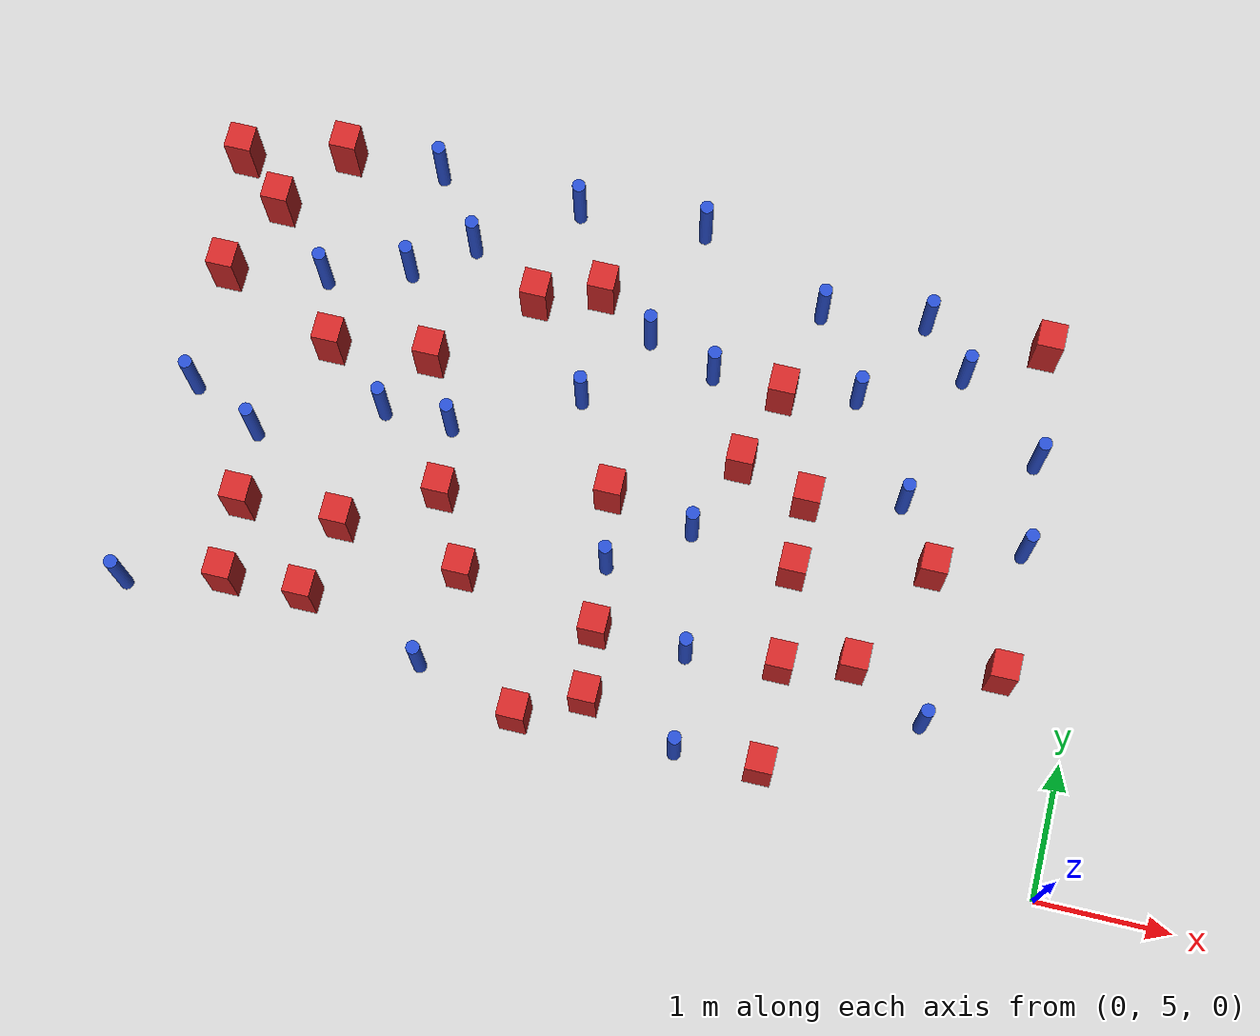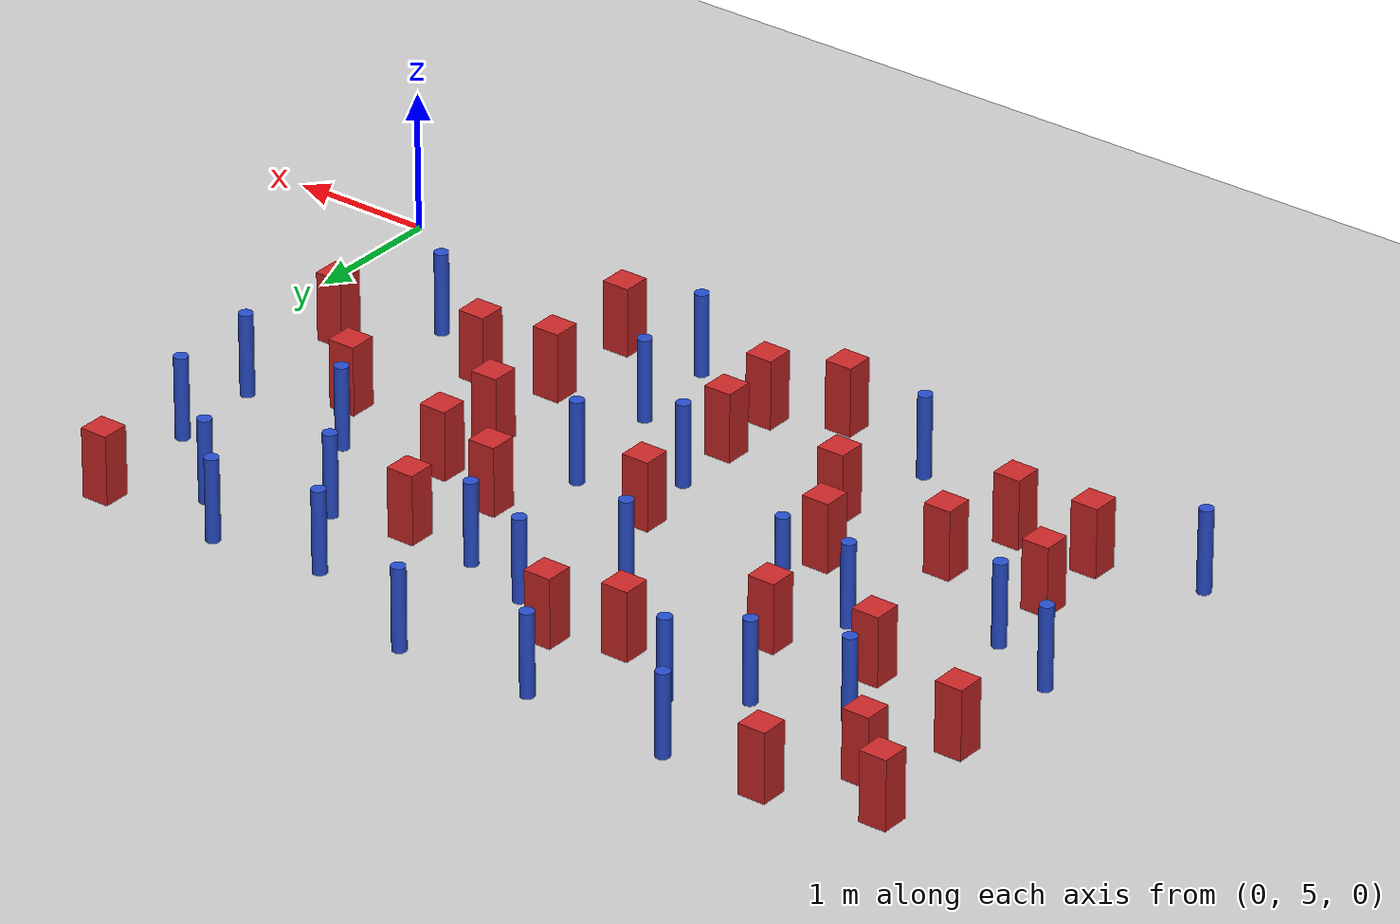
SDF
<sdf version="1.6">
 <world name="default">
  <model name="ground_plane">
   <static>1</static>
   <link name="link">
    <collision name="collision">
     <geometry><plane><normal>0 0 1</normal><size>100 100</size></plane></geometry>
     <surface><friction><ode><mu>100</mu><mu2>50</mu2></ode></friction></surface>
    </collision>
    <visual name="visual">
     <cast_shadows>0</cast_shadows>
     <geometry><plane><normal>0 0 1</normal><size>100 100</size></plane></geometry>
     <material>
      <ambient>1.0 1.0 1.0 1.0</ambient>
      <diffuse>0.8 0.8 0.8 1.0</diffuse>
      <specular>0.01 0.01 0.01 1.000000</specular>
     </material>
    </visual>
   </link>
  </model>
  <model name="square_post_obstacle4">
   <static>true</static>
   <pose>-2.18338594091 7.47727336232 1.91545236811e-07 -7.35059704564e-06 1.12565212e-07 2.39332434364e-05</pose>
   <link name="link">
    <pose>0 0 0.25 0 -0 0</pose>
    <inertial>
     <mass>100</mass>
     <inertia>
      <ixx>0.166667</ixx>
      <ixy>0</ixy>
      <ixz>0</ixz>
      <iyy>0.166667</iyy>
      <iyz>0</iyz>
      <izz>0.166667</izz>
     </inertia>
    </inertial>
    <collision name="collision"><geometry><box><size>.2 .2 .5</size></box></geometry></collision>
    <visual name="visual">
     <geometry><box><size>.2 .2 .5</size></box></geometry>
     <material>
      <script><name>Gazebo/Red</name><uri>file://media/materials/scripts/gazebo.material</uri></script>
     </material>
    </visual>
   </link>
  </model>
  <model name="square_post_obstacle5">
   <static>true</static>
   <pose>-2.09353412493 5.46867902602 1.91545236811e-07 -7.35059704564e-06 1.12565212e-07 2.39332434364e-05</pose>
   <link name="link">
    <pose>0 0 0.25 0 -0 0</pose>
    <inertial>
     <mass>100</mass>
     <inertia>
      <ixx>0.166667</ixx>
      <ixy>0</ixy>
      <ixz>0</ixz>
      <iyy>0.166667</iyy>
      <iyz>0</iyz>
      <izz>0.166667</izz>
     </inertia>
    </inertial>
    <collision name="collision"><geometry><box><size>.2 .2 .5</size></box></geometry></collision>
    <visual name="visual">
     <geometry><box><size>.2 .2 .5</size></box></geometry>
     <material>
      <script><name>Gazebo/Red</name><uri>file://media/materials/scripts/gazebo.material</uri></script>
     </material>
    </visual>
   </link>
  </model>
  <model name="pole_obstacle29">
   <static>true</static>
   <pose>-5.47760591414 8.57900910138 7.38925637345e-09 -8.471706928e-08 1.24976765081e-08 -1.74513093015e-07</pose>
   <link name="link">
    <pose>0 0 0.3 0 -0 0</pose>
    <inertial>
     <mass>1</mass>
     <inertia><ixx>0.145833</ixx><ixy>0</ixy><ixz>0</ixz><iyy>0.145833</iyy><iyz>0</iyz><izz>0.125</izz></inertia>
    </inertial>
    <collision name="collision">
     <geometry><cylinder><radius>0.05</radius><length>.6</length></cylinder></geometry>
    </collision>
    <visual name="visual">
     <geometry><cylinder><radius>0.05</radius><length>.6</length></cylinder></geometry>
     <material>
      <script><name>Gazebo/Blue</name><uri>file://media/materials/scripts/gazebo.material</uri></script>
     </material>
    </visual>
   </link>
  </model>
  <model name="pole_obstacle36">
   <static>true</static>
   <pose>-1.24065969372 8.69629543306 7.38925637345e-09 -8.47170692798e-08 1.24976764881e-08 -1.74513093027e-07</pose>
   <link name="link">
    <pose>0 0 0.3 0 -0 0</pose>
    <inertial>
     <mass>1</mass>
     <inertia><ixx>0.145833</ixx><ixy>0</ixy><ixz>0</ixz><iyy>0.145833</iyy><iyz>0</iyz><izz>0.125</izz></inertia>
    </inertial>
    <collision name="collision">
     <geometry><cylinder><radius>0.05</radius><length>.6</length></cylinder></geometry>
    </collision>
    <visual name="visual">
     <geometry><cylinder><radius>0.05</radius><length>.6</length></cylinder></geometry>
     <material>
      <script><name>Gazebo/Blue</name><uri>file://media/materials/scripts/gazebo.material</uri></script>
     </material>
    </visual>
   </link>
  </model>
  <model name="square_post_obstacle36">
   <static>true</static>
   <pose>-4.81142760637 6.93262582316 1.91545236811e-07 -7.35059704564e-06 1.12565212e-07 2.39332434364e-05</pose>
   <link name="link">
    <pose>0 0 0.25 0 -0 0</pose>
    <inertial>
     <mass>100</mass>
     <inertia>
      <ixx>0.166667</ixx>
      <ixy>0</ixy>
      <ixz>0</ixz>
      <iyy>0.166667</iyy>
      <iyz>0</iyz>
      <izz>0.166667</izz>
     </inertia>
    </inertial>
    <collision name="collision"><geometry><box><size>.2 .2 .5</size></box></geometry></collision>
    <visual name="visual">
     <geometry><box><size>.2 .2 .5</size></box></geometry>
     <material>
      <script><name>Gazebo/Red</name><uri>file://media/materials/scripts/gazebo.material</uri></script>
     </material>
    </visual>
   </link>
  </model>
  <model name="square_post_obstacle41">
   <static>true</static>
   <pose>-6.17321021042 9.38727669501 1.91545236811e-07 -7.35059704564e-06 1.12565212e-07 2.39332434364e-05</pose>
   <link name="link">
    <pose>0 0 0.25 0 -0 0</pose>
    <inertial>
     <mass>100</mass>
     <inertia>
      <ixx>0.166667</ixx>
      <ixy>0</ixy>
      <ixz>0</ixz>
      <iyy>0.166667</iyy>
      <iyz>0</iyz>
      <izz>0.166667</izz>
     </inertia>
    </inertial>
    <collision name="collision"><geometry><box><size>.2 .2 .5</size></box></geometry></collision>
    <visual name="visual">
     <geometry><box><size>.2 .2 .5</size></box></geometry>
     <material>
      <script><name>Gazebo/Red</name><uri>file://media/materials/scripts/gazebo.material</uri></script>
     </material>
    </visual>
   </link>
  </model>
  <model name="square_post_obstacle47">
   <static>true</static>
   <pose>-5.58289400169 5.96464867855 1.91545236811e-07 -7.35059704564e-06 1.12565212e-07 2.39332434364e-05</pose>
   <link name="link">
    <pose>0 0 0.25 0 -0 0</pose>
    <inertial>
     <mass>100</mass>
     <inertia>
      <ixx>0.166667</ixx>
      <ixy>0</ixy>
      <ixz>0</ixz>
      <iyy>0.166667</iyy>
      <iyz>0</iyz>
      <izz>0.166667</izz>
     </inertia>
    </inertial>
    <collision name="collision"><geometry><box><size>.2 .2 .5</size></box></geometry></collision>
    <visual name="visual">
     <geometry><box><size>.2 .2 .5</size></box></geometry>
     <material>
      <script><name>Gazebo/Red</name><uri>file://media/materials/scripts/gazebo.material</uri></script>
     </material>
    </visual>
   </link>
  </model>
  <model name="pole_obstacle48">
   <static>true</static>
   <pose>-1.98327608334 8.35377310548 7.38925637345e-09 -8.47170692797e-08 1.24976764886e-08 -1.74513093027e-07</pose>
   <link name="link">
    <pose>0 0 0.3 0 -0 0</pose>
    <inertial>
     <mass>1</mass>
     <inertia><ixx>0.145833</ixx><ixy>0</ixy><ixz>0</ixz><iyy>0.145833</iyy><iyz>0</iyz><izz>0.125</izz></inertia>
    </inertial>
    <collision name="collision">
     <geometry><cylinder><radius>0.05</radius><length>.6</length></cylinder></geometry>
    </collision>
    <visual name="visual">
     <geometry><cylinder><radius>0.05</radius><length>.6</length></cylinder></geometry>
     <material>
      <script><name>Gazebo/Blue</name><uri>file://media/materials/scripts/gazebo.material</uri></script>
     </material>
    </visual>
   </link>
  </model>
  <model name="square_post_obstacle55">
   <static>true</static>
   <pose>-4.51515152922 6.37917610294 1.91545236811e-07 -7.35059704564e-06 1.12565212e-07 2.39332434364e-05</pose>
   <link name="link">
    <pose>0 0 0.25 0 -0 0</pose>
    <inertial>
     <mass>100</mass>
     <inertia>
      <ixx>0.166667</ixx>
      <ixy>0</ixy>
      <ixz>0</ixz>
      <iyy>0.166667</iyy>
      <iyz>0</iyz>
      <izz>0.166667</izz>
     </inertia>
    </inertial>
    <collision name="collision"><geometry><box><size>.2 .2 .5</size></box></geometry></collision>
    <visual name="visual">
     <geometry><box><size>.2 .2 .5</size></box></geometry>
     <material>
      <script><name>Gazebo/Red</name><uri>file://media/materials/scripts/gazebo.material</uri></script>
     </material>
    </visual>
   </link>
  </model>
  <model name="square_post_obstacle57">
   <static>true</static>
   <pose>-6.81252453637 8.26209978854 1.91545236811e-07 -7.35059704564e-06 1.12565212e-07 2.39332434364e-05</pose>
   <link name="link">
    <pose>0 0 0.25 0 -0 0</pose>
    <inertial>
     <mass>100</mass>
     <inertia>
      <ixx>0.166667</ixx>
      <ixy>0</ixy>
      <ixz>0</ixz>
      <iyy>0.166667</iyy>
      <iyz>0</iyz>
      <izz>0.166667</izz>
     </inertia>
    </inertial>
    <collision name="collision"><geometry><box><size>.2 .2 .5</size></box></geometry></collision>
    <visual name="visual">
     <geometry><box><size>.2 .2 .5</size></box></geometry>
     <material>
      <script><name>Gazebo/Red</name><uri>file://media/materials/scripts/gazebo.material</uri></script>
     </material>
    </visual>
   </link>
  </model>
  <model name="pole_obstacle56">
   <static>true</static>
   <pose>-2.95176064944 7.06821592145 7.38925637345e-09 -8.47170692798e-08 1.24976765033e-08 -1.74513093019e-07</pose>
   <link name="link">
    <pose>0 0 0.3 0 -0 0</pose>
    <inertial>
     <mass>1</mass>
     <inertia><ixx>0.145833</ixx><ixy>0</ixy><ixz>0</ixz><iyy>0.145833</iyy><iyz>0</iyz><izz>0.125</izz></inertia>
    </inertial>
    <collision name="collision">
     <geometry><cylinder><radius>0.05</radius><length>.6</length></cylinder></geometry>
    </collision>
    <visual name="visual">
     <geometry><cylinder><radius>0.05</radius><length>.6</length></cylinder></geometry>
     <material>
      <script><name>Gazebo/Blue</name><uri>file://media/materials/scripts/gazebo.material</uri></script>
     </material>
    </visual>
   </link>
  </model>
  <model name="square_post_obstacle61">
   <static>true</static>
   <pose>-2.53691254353 8.24513015877 1.91545236811e-07 -7.35059704564e-06 1.12565212e-07 2.39332434364e-05</pose>
   <link name="link">
    <pose>0 0 0.25 0 -0 0</pose>
    <inertial>
     <mass>100</mass>
     <inertia>
      <ixx>0.166667</ixx>
      <ixy>0</ixy>
      <ixz>0</ixz>
      <iyy>0.166667</iyy>
      <iyz>0</iyz>
      <izz>0.166667</izz>
     </inertia>
    </inertial>
    <collision name="collision"><geometry><box><size>.2 .2 .5</size></box></geometry></collision>
    <visual name="visual">
     <geometry><box><size>.2 .2 .5</size></box></geometry>
     <material>
      <script><name>Gazebo/Red</name><uri>file://media/materials/scripts/gazebo.material</uri></script>
     </material>
    </visual>
   </link>
  </model>
  <model name="square_post_obstacle64">
   <static>true</static>
   <pose>-2.11454618402 6.22965114612 1.91545236811e-07 -7.35059704564e-06 1.12565212e-07 2.39332434364e-05</pose>
   <link name="link">
    <pose>0 0 0.25 0 -0 0</pose>
    <inertial>
     <mass>100</mass>
     <inertia>
      <ixx>0.166667</ixx>
      <ixy>0</ixy>
      <ixz>0</ixz>
      <iyy>0.166667</iyy>
      <iyz>0</iyz>
      <izz>0.166667</izz>
     </inertia>
    </inertial>
    <collision name="collision"><geometry><box><size>.2 .2 .5</size></box></geometry></collision>
    <visual name="visual">
     <geometry><box><size>.2 .2 .5</size></box></geometry>
     <material>
      <script><name>Gazebo/Red</name><uri>file://media/materials/scripts/gazebo.material</uri></script>
     </material>
    </visual>
   </link>
  </model>
  <model name="square_post_obstacle68">
   <static>true</static>
   <pose>-4.49020691341 8.56332453743 1.91545236811e-07 -7.35059704564e-06 1.12565212e-07 2.39332434364e-05</pose>
   <link name="link">
    <pose>0 0 0.25 0 -0 0</pose>
    <inertial>
     <mass>100</mass>
     <inertia>
      <ixx>0.166667</ixx>
      <ixy>0</ixy>
      <ixz>0</ixz>
      <iyy>0.166667</iyy>
      <iyz>0</iyz>
      <izz>0.166667</izz>
     </inertia>
    </inertial>
    <collision name="collision"><geometry><box><size>.2 .2 .5</size></box></geometry></collision>
    <visual name="visual">
     <geometry><box><size>.2 .2 .5</size></box></geometry>
     <material>
      <script><name>Gazebo/Red</name><uri>file://media/materials/scripts/gazebo.material</uri></script>
     </material>
    </visual>
   </link>
  </model>
  <model name="pole_obstacle69">
   <static>true</static>
   <pose>-3.98022365735 7.88419160154 7.38925637345e-09 -8.47170692799e-08 1.24976764985e-08 -1.74513093022e-07</pose>
   <link name="link">
    <pose>0 0 0.3 0 -0 0</pose>
    <inertial>
     <mass>1</mass>
     <inertia><ixx>0.145833</ixx><ixy>0</ixy><ixz>0</ixz><iyy>0.145833</iyy><iyz>0</iyz><izz>0.125</izz></inertia>
    </inertial>
    <collision name="collision">
     <geometry><cylinder><radius>0.05</radius><length>.6</length></cylinder></geometry>
    </collision>
    <visual name="visual">
     <geometry><cylinder><radius>0.05</radius><length>.6</length></cylinder></geometry>
     <material>
      <script><name>Gazebo/Blue</name><uri>file://media/materials/scripts/gazebo.material</uri></script>
     </material>
    </visual>
   </link>
  </model>
  <model name="pole_obstacle70">
   <static>true</static>
   <pose>-1.48681890846 7.63086267479 7.38925637345e-09 -8.47170692799e-08 1.24976765033e-08 -1.74513093018e-07</pose>
   <link name="link">
    <pose>0 0 0.3 0 -0 0</pose>
    <inertial>
     <mass>1</mass>
     <inertia><ixx>0.145833</ixx><ixy>0</ixy><ixz>0</ixz><iyy>0.145833</iyy><iyz>0</iyz><izz>0.125</izz></inertia>
    </inertial>
    <collision name="collision">
     <geometry><cylinder><radius>0.05</radius><length>.6</length></cylinder></geometry>
    </collision>
    <visual name="visual">
     <geometry><cylinder><radius>0.05</radius><length>.6</length></cylinder></geometry>
     <material>
      <script><name>Gazebo/Blue</name><uri>file://media/materials/scripts/gazebo.material</uri></script>
     </material>
    </visual>
   </link>
  </model>
  <model name="square_post_obstacle76">
   <static>true</static>
   <pose>-0.547084585579 6.51722801534 1.91545236811e-07 -7.35059704564e-06 1.12565212e-07 2.39332434364e-05</pose>
   <link name="link">
    <pose>0 0 0.25 0 -0 0</pose>
    <inertial>
     <mass>100</mass>
     <inertia>
      <ixx>0.166667</ixx>
      <ixy>0</ixy>
      <ixz>0</ixz>
      <iyy>0.166667</iyy>
      <iyz>0</iyz>
      <izz>0.166667</izz>
     </inertia>
    </inertial>
    <collision name="collision"><geometry><box><size>.2 .2 .5</size></box></geometry></collision>
    <visual name="visual">
     <geometry><box><size>.2 .2 .5</size></box></geometry>
     <material>
      <script><name>Gazebo/Red</name><uri>file://media/materials/scripts/gazebo.material</uri></script>
     </material>
    </visual>
   </link>
  </model>
  <model name="pole_obstacle73">
   <static>true</static>
   <pose>-6.2776698672 7.08920496744 7.38925637345e-09 -8.47170692796e-08 1.24976764786e-08 -1.74513093032e-07</pose>
   <link name="link">
    <pose>0 0 0.3 0 -0 0</pose>
    <inertial>
     <mass>1</mass>
     <inertia><ixx>0.145833</ixx><ixy>0</ixy><ixz>0</ixz><iyy>0.145833</iyy><iyz>0</iyz><izz>0.125</izz></inertia>
    </inertial>
    <collision name="collision">
     <geometry><cylinder><radius>0.05</radius><length>.6</length></cylinder></geometry>
    </collision>
    <visual name="visual">
     <geometry><cylinder><radius>0.05</radius><length>.6</length></cylinder></geometry>
     <material>
      <script><name>Gazebo/Blue</name><uri>file://media/materials/scripts/gazebo.material</uri></script>
     </material>
    </visual>
   </link>
  </model>
  <model name="pole_obstacle79">
   <static>true</static>
   <pose>-2.38315775506 8.95470254823 7.38925637345e-09 -8.47170692793e-08 1.24976764408e-08 -1.74513093041e-07</pose>
   <link name="link">
    <pose>0 0 0.3 0 -0 0</pose>
    <inertial>
     <mass>1</mass>
     <inertia><ixx>0.145833</ixx><ixy>0</ixy><ixz>0</ixz><iyy>0.145833</iyy><iyz>0</iyz><izz>0.125</izz></inertia>
    </inertial>
    <collision name="collision">
     <geometry><cylinder><radius>0.05</radius><length>.6</length></cylinder></geometry>
    </collision>
    <visual name="visual">
     <geometry><cylinder><radius>0.05</radius><length>.6</length></cylinder></geometry>
     <material>
      <script><name>Gazebo/Blue</name><uri>file://media/materials/scripts/gazebo.material</uri></script>
     </material>
    </visual>
   </link>
  </model>
  <model name="square_post_obstacle79">
   <static>true</static>
   <pose>-3.41670570513 5.67847307558 1.91545236811e-07 -7.35059704564e-06 1.12565212e-07 2.39332434364e-05</pose>
   <link name="link">
    <pose>0 0 0.25 0 -0 0</pose>
    <inertial>
     <mass>100</mass>
     <inertia>
      <ixx>0.166667</ixx>
      <ixy>0</ixy>
      <ixz>0</ixz>
      <iyy>0.166667</iyy>
      <iyz>0</iyz>
      <izz>0.166667</izz>
     </inertia>
    </inertial>
    <collision name="collision"><geometry><box><size>.2 .2 .5</size></box></geometry></collision>
    <visual name="visual">
     <geometry><box><size>.2 .2 .5</size></box></geometry>
     <material>
      <script><name>Gazebo/Red</name><uri>file://media/materials/scripts/gazebo.material</uri></script>
     </material>
    </visual>
   </link>
  </model>
  <model name="pole_obstacle85">
   <static>true</static>
   <pose>-6.80958646768 7.34204937441 7.38925637345e-09 -8.47170692796e-08 1.24976764786e-08 -1.74513093032e-07</pose>
   <link name="link">
    <pose>0 0 0.3 0 -0 0</pose>
    <inertial>
     <mass>1</mass>
     <inertia><ixx>0.145833</ixx><ixy>0</ixy><ixz>0</ixz><iyy>0.145833</iyy><iyz>0</iyz><izz>0.125</izz></inertia>
    </inertial>
    <collision name="collision">
     <geometry><cylinder><radius>0.05</radius><length>.6</length></cylinder></geometry>
    </collision>
    <visual name="visual">
     <geometry><cylinder><radius>0.05</radius><length>.6</length></cylinder></geometry>
     <material>
      <script><name>Gazebo/Blue</name><uri>file://media/materials/scripts/gazebo.material</uri></script>
     </material>
    </visual>
   </link>
  </model>
  <model name="square_post_obstacle81">
   <static>true</static>
   <pose>-1.59833320639 6.35084254952 1.91545236811e-07 -7.35059704564e-06 1.12565212e-07 2.39332434364e-05</pose>
   <link name="link">
    <pose>0 0 0.25 0 -0 0</pose>
    <inertial>
     <mass>100</mass>
     <inertia>
      <ixx>0.166667</ixx>
      <ixy>0</ixy>
      <ixz>0</ixz>
      <iyy>0.166667</iyy>
      <iyz>0</iyz>
      <izz>0.166667</izz>
     </inertia>
    </inertial>
    <collision name="collision"><geometry><box><size>.2 .2 .5</size></box></geometry></collision>
    <visual name="visual">
     <geometry><box><size>.2 .2 .5</size></box></geometry>
     <material>
      <script><name>Gazebo/Red</name><uri>file://media/materials/scripts/gazebo.material</uri></script>
     </material>
    </visual>
   </link>
  </model>
  <model name="pole_obstacle96">
   <static>true</static>
   <pose>-0.555544751048 7.46191895717 7.38925637345e-09 -8.471706928e-08 1.24976765086e-08 -1.74513093015e-07</pose>
   <link name="link">
    <pose>0 0 0.3 0 -0 0</pose>
    <inertial>
     <mass>1</mass>
     <inertia><ixx>0.145833</ixx><ixy>0</ixy><ixz>0</ixz><iyy>0.145833</iyy><iyz>0</iyz><izz>0.125</izz></inertia>
    </inertial>
    <collision name="collision">
     <geometry><cylinder><radius>0.05</radius><length>.6</length></cylinder></geometry>
    </collision>
    <visual name="visual">
     <geometry><cylinder><radius>0.05</radius><length>.6</length></cylinder></geometry>
     <material>
      <script><name>Gazebo/Blue</name><uri>file://media/materials/scripts/gazebo.material</uri></script>
     </material>
    </visual>
   </link>
  </model>
  <model name="pole_obstacle98">
   <static>true</static>
   <pose>-4.87361338813 7.4525439661 7.38925637345e-09 -8.47170692796e-08 1.24976764786e-08 -1.74513093032e-07</pose>
   <link name="link">
    <pose>0 0 0.3 0 -0 0</pose>
    <inertial>
     <mass>1</mass>
     <inertia><ixx>0.145833</ixx><ixy>0</ixy><ixz>0</ixz><iyy>0.145833</iyy><iyz>0</iyz><izz>0.125</izz></inertia>
    </inertial>
    <collision name="collision">
     <geometry><cylinder><radius>0.05</radius><length>.6</length></cylinder></geometry>
    </collision>
    <visual name="visual">
     <geometry><cylinder><radius>0.05</radius><length>.6</length></cylinder></geometry>
     <material>
      <script><name>Gazebo/Blue</name><uri>file://media/materials/scripts/gazebo.material</uri></script>
     </material>
    </visual>
   </link>
  </model>
  <model name="square_post_obstacle96">
   <static>true</static>
   <pose>-2.17088516043 6.93913535614 1.91545236811e-07 -7.35059704564e-06 1.12565212e-07 2.39332434364e-05</pose>
   <link name="link">
    <pose>0 0 0.25 0 -0 0</pose>
    <inertial>
     <mass>100</mass>
     <inertia>
      <ixx>0.166667</ixx>
      <ixy>0</ixy>
      <ixz>0</ixz>
      <iyy>0.166667</iyy>
      <iyz>0</iyz>
      <izz>0.166667</izz>
     </inertia>
    </inertial>
    <collision name="collision"><geometry><box><size>.2 .2 .5</size></box></geometry></collision>
    <visual name="visual">
     <geometry><box><size>.2 .2 .5</size></box></geometry>
     <material>
      <script><name>Gazebo/Red</name><uri>file://media/materials/scripts/gazebo.material</uri></script>
     </material>
    </visual>
   </link>
  </model>
  <model name="square_post_obstacle98">
   <static>true</static>
   <pose>-2.71771555069 7.64995606613 1.91545236811e-07 -7.35059704564e-06 1.12565212e-07 2.39332434364e-05</pose>
   <link name="link">
    <pose>0 0 0.25 0 -0 0</pose>
    <inertial>
     <mass>100</mass>
     <inertia>
      <ixx>0.166667</ixx>
      <ixy>0</ixy>
      <ixz>0</ixz>
      <iyy>0.166667</iyy>
      <iyz>0</iyz>
      <izz>0.166667</izz>
     </inertia>
    </inertial>
    <collision name="collision"><geometry><box><size>.2 .2 .5</size></box></geometry></collision>
    <visual name="visual">
     <geometry><box><size>.2 .2 .5</size></box></geometry>
     <material>
      <script><name>Gazebo/Red</name><uri>file://media/materials/scripts/gazebo.material</uri></script>
     </material>
    </visual>
   </link>
  </model>
  <model name="pole_obstacle113">
   <static>true</static>
   <pose>-5.39246306366 7.46424160059 7.38925637345e-09 -8.47170692796e-08 1.24976764786e-08 -1.74513093032e-07</pose>
   <link name="link">
    <pose>0 0 0.3 0 -0 0</pose>
    <inertial>
     <mass>1</mass>
     <inertia><ixx>0.145833</ixx><ixy>0</ixy><ixz>0</ixz><iyy>0.145833</iyy><iyz>0</iyz><izz>0.125</izz></inertia>
    </inertial>
    <collision name="collision">
     <geometry><cylinder><radius>0.05</radius><length>.6</length></cylinder></geometry>
    </collision>
    <visual name="visual">
     <geometry><cylinder><radius>0.05</radius><length>.6</length></cylinder></geometry>
     <material>
      <script><name>Gazebo/Blue</name><uri>file://media/materials/scripts/gazebo.material</uri></script>
     </material>
    </visual>
   </link>
  </model>
  <model name="square_post_obstacle102">
   <static>true</static>
   <pose>-5.14493709782 7.93628447326 1.91545236811e-07 -7.35059704564e-06 1.12565212e-07 2.39332434364e-05</pose>
   <link name="link">
    <pose>0 0 0.25 0 -0 0</pose>
    <inertial>
     <mass>100</mass>
     <inertia>
      <ixx>0.166667</ixx>
      <ixy>0</ixy>
      <ixz>0</ixz>
      <iyy>0.166667</iyy>
      <iyz>0</iyz>
      <izz>0.166667</izz>
     </inertia>
    </inertial>
    <collision name="collision"><geometry><box><size>.2 .2 .5</size></box></geometry></collision>
    <visual name="visual">
     <geometry><box><size>.2 .2 .5</size></box></geometry>
     <material>
      <script><name>Gazebo/Red</name><uri>file://media/materials/scripts/gazebo.material</uri></script>
     </material>
    </visual>
   </link>
  </model>
  <model name="square_post_obstacle111">
   <static>true</static>
   <pose>-1.18475383671 7.16976985399 1.91545236811e-07 -7.35059704564e-06 1.12565212e-07 2.39332434364e-05</pose>
   <link name="link">
    <pose>0 0 0.25 0 -0 0</pose>
    <inertial>
     <mass>100</mass>
     <inertia>
      <ixx>0.166667</ixx>
      <ixy>0</ixy>
      <ixz>0</ixz>
      <iyy>0.166667</iyy>
      <iyz>0</iyz>
      <izz>0.166667</izz>
     </inertia>
    </inertial>
    <collision name="collision"><geometry><box><size>.2 .2 .5</size></box></geometry></collision>
    <visual name="visual">
     <geometry><box><size>.2 .2 .5</size></box></geometry>
     <material>
      <script><name>Gazebo/Red</name><uri>file://media/materials/scripts/gazebo.material</uri></script>
     </material>
    </visual>
   </link>
  </model>
  <model name="pole_obstacle122">
   <static>true</static>
   <pose>-3.06911079745 8.29309184187 7.38925637345e-09 -8.47170692793e-08 1.24976764408e-08 -1.74513093041e-07</pose>
   <link name="link">
    <pose>0 0 0.3 0 -0 0</pose>
    <inertial>
     <mass>1</mass>
     <inertia><ixx>0.145833</ixx><ixy>0</ixy><ixz>0</ixz><iyy>0.145833</iyy><iyz>0</iyz><izz>0.125</izz></inertia>
    </inertial>
    <collision name="collision">
     <geometry><cylinder><radius>0.05</radius><length>.6</length></cylinder></geometry>
    </collision>
    <visual name="visual">
     <geometry><cylinder><radius>0.05</radius><length>.6</length></cylinder></geometry>
     <material>
      <script><name>Gazebo/Blue</name><uri>file://media/materials/scripts/gazebo.material</uri></script>
     </material>
    </visual>
   </link>
  </model>
  <model name="pole_obstacle123">
   <static>true</static>
   <pose>-1.5954627508 9.05156726647 7.38925637345e-09 -8.47170692798e-08 1.24976764881e-08 -1.74513093027e-07</pose>
   <link name="link">
    <pose>0 0 0.3 0 -0 0</pose>
    <inertial>
     <mass>1</mass>
     <inertia><ixx>0.145833</ixx><ixy>0</ixy><ixz>0</ixz><iyy>0.145833</iyy><iyz>0</iyz><izz>0.125</izz></inertia>
    </inertial>
    <collision name="collision">
     <geometry><cylinder><radius>0.05</radius><length>.6</length></cylinder></geometry>
    </collision>
    <visual name="visual">
     <geometry><cylinder><radius>0.05</radius><length>.6</length></cylinder></geometry>
     <material>
      <script><name>Gazebo/Blue</name><uri>file://media/materials/scripts/gazebo.material</uri></script>
     </material>
    </visual>
   </link>
  </model>
  <model name="pole_obstacle128">
   <static>true</static>
   <pose>-0.594673106542 8.15742403099 7.38925637345e-09 -8.47170692797e-08 1.249767648e-08 -1.74513093032e-07</pose>
   <link name="link">
    <pose>0 0 0.3 0 -0 0</pose>
    <inertial>
     <mass>1</mass>
     <inertia><ixx>0.145833</ixx><ixy>0</ixy><ixz>0</ixz><iyy>0.145833</iyy><iyz>0</iyz><izz>0.125</izz></inertia>
    </inertial>
    <collision name="collision">
     <geometry><cylinder><radius>0.05</radius><length>.6</length></cylinder></geometry>
    </collision>
    <visual name="visual">
     <geometry><cylinder><radius>0.05</radius><length>.6</length></cylinder></geometry>
     <material>
      <script><name>Gazebo/Blue</name><uri>file://media/materials/scripts/gazebo.material</uri></script>
     </material>
    </visual>
   </link>
  </model>
  <model name="square_post_obstacle114">
   <static>true</static>
   <pose>-6.93727238645 9.19613190633 1.91545236811e-07 -7.35059704564e-06 1.12565212e-07 2.39332434364e-05</pose>
   <link name="link">
    <pose>0 0 0.25 0 -0 0</pose>
    <inertial>
     <mass>100</mass>
     <inertia>
      <ixx>0.166667</ixx>
      <ixy>0</ixy>
      <ixz>0</ixz>
      <iyy>0.166667</iyy>
      <iyz>0</iyz>
      <izz>0.166667</izz>
     </inertia>
    </inertial>
    <collision name="collision"><geometry><box><size>.2 .2 .5</size></box></geometry></collision>
    <visual name="visual">
     <geometry><box><size>.2 .2 .5</size></box></geometry>
     <material>
      <script><name>Gazebo/Red</name><uri>file://media/materials/scripts/gazebo.material</uri></script>
     </material>
    </visual>
   </link>
  </model>
  <model name="pole_obstacle135">
   <static>true</static>
   <pose>-1.03083866546 6.0443904882 7.38925637345e-09 -8.47170692799e-08 1.2497676505e-08 -1.74513093018e-07</pose>
   <link name="link">
    <pose>0 0 0.3 0 -0 0</pose>
    <inertial>
     <mass>1</mass>
     <inertia><ixx>0.145833</ixx><ixy>0</ixy><ixz>0</ixz><iyy>0.145833</iyy><iyz>0</iyz><izz>0.125</izz></inertia>
    </inertial>
    <collision name="collision">
     <geometry><cylinder><radius>0.05</radius><length>.6</length></cylinder></geometry>
    </collision>
    <visual name="visual">
     <geometry><cylinder><radius>0.05</radius><length>.6</length></cylinder></geometry>
     <material>
      <script><name>Gazebo/Blue</name><uri>file://media/materials/scripts/gazebo.material</uri></script>
     </material>
    </visual>
   </link>
  </model>
  <model name="square_post_obstacle123">
   <static>true</static>
   <pose>-6.21791492257 6.54000399965 1.91545236811e-07 -7.35059704564e-06 1.12565212e-07 2.39332434364e-05</pose>
   <link name="link">
    <pose>0 0 0.25 0 -0 0</pose>
    <inertial>
     <mass>100</mass>
     <inertia>
      <ixx>0.166667</ixx>
      <ixy>0</ixy>
      <ixz>0</ixz>
      <iyy>0.166667</iyy>
      <iyz>0</iyz>
      <izz>0.166667</izz>
     </inertia>
    </inertial>
    <collision name="collision"><geometry><box><size>.2 .2 .5</size></box></geometry></collision>
    <visual name="visual">
     <geometry><box><size>.2 .2 .5</size></box></geometry>
     <material>
      <script><name>Gazebo/Red</name><uri>file://media/materials/scripts/gazebo.material</uri></script>
     </material>
    </visual>
   </link>
  </model>
  <model name="pole_obstacle140">
   <static>true</static>
   <pose>-3.50536360592 6.68131828754 7.38925637345e-09 -8.47170692794e-08 1.24976764468e-08 -1.7451309304e-07</pose>
   <link name="link">
    <pose>0 0 0.3 0 -0 0</pose>
    <inertial>
     <mass>1</mass>
     <inertia><ixx>0.145833</ixx><ixy>0</ixy><ixz>0</ixz><iyy>0.145833</iyy><iyz>0</iyz><izz>0.125</izz></inertia>
    </inertial>
    <collision name="collision">
     <geometry><cylinder><radius>0.05</radius><length>.6</length></cylinder></geometry>
    </collision>
    <visual name="visual">
     <geometry><cylinder><radius>0.05</radius><length>.6</length></cylinder></geometry>
     <material>
      <script><name>Gazebo/Blue</name><uri>file://media/materials/scripts/gazebo.material</uri></script>
     </material>
    </visual>
   </link>
  </model>
  <model name="pole_obstacle142">
   <static>true</static>
   <pose>-5.05151032916 8.88209787395 7.38925637345e-09 -8.471706928e-08 1.24976765081e-08 -1.74513093015e-07</pose>
   <link name="link">
    <pose>0 0 0.3 0 -0 0</pose>
    <inertial>
     <mass>1</mass>
     <inertia><ixx>0.145833</ixx><ixy>0</ixy><ixz>0</ixz><iyy>0.145833</iyy><iyz>0</iyz><izz>0.125</izz></inertia>
    </inertial>
    <collision name="collision">
     <geometry><cylinder><radius>0.05</radius><length>.6</length></cylinder></geometry>
    </collision>
    <visual name="visual">
     <geometry><cylinder><radius>0.05</radius><length>.6</length></cylinder></geometry>
     <material>
      <script><name>Gazebo/Blue</name><uri>file://media/materials/scripts/gazebo.material</uri></script>
     </material>
    </visual>
   </link>
  </model>
  <model name="square_post_obstacle132">
   <static>true</static>
   <pose>-6.56076426325 8.86547111337 1.91545236811e-07 -7.35059704564e-06 1.12565212e-07 2.39332434364e-05</pose>
   <link name="link">
    <pose>0 0 0.25 0 -0 0</pose>
    <inertial>
     <mass>100</mass>
     <inertia>
      <ixx>0.166667</ixx>
      <ixy>0</ixy>
      <ixz>0</ixz>
      <iyy>0.166667</iyy>
      <iyz>0</iyz>
      <izz>0.166667</izz>
     </inertia>
    </inertial>
    <collision name="collision"><geometry><box><size>.2 .2 .5</size></box></geometry></collision>
    <visual name="visual">
     <geometry><box><size>.2 .2 .5</size></box></geometry>
     <material>
      <script><name>Gazebo/Red</name><uri>file://media/materials/scripts/gazebo.material</uri></script>
     </material>
    </visual>
   </link>
  </model>
  <model name="square_post_obstacle135">
   <static>true</static>
   <pose>-3.47038930105 6.18247457314 1.91545236811e-07 -7.35059704564e-06 1.12565212e-07 2.39332434364e-05</pose>
   <link name="link">
    <pose>0 0 0.25 0 -0 0</pose>
    <inertial>
     <mass>100</mass>
     <inertia>
      <ixx>0.166667</ixx>
      <ixy>0</ixy>
      <ixz>0</ixz>
      <iyy>0.166667</iyy>
      <iyz>0</iyz>
      <izz>0.166667</izz>
     </inertia>
    </inertial>
    <collision name="collision"><geometry><box><size>.2 .2 .5</size></box></geometry></collision>
    <visual name="visual">
     <geometry><box><size>.2 .2 .5</size></box></geometry>
     <material>
      <script><name>Gazebo/Red</name><uri>file://media/materials/scripts/gazebo.material</uri></script>
     </material>
    </visual>
   </link>
  </model>
  <model name="square_post_obstacle139">
   <static>true</static>
   <pose>-6.17634566985 5.95937414609 1.91545236811e-07 -7.35059704564e-06 1.12565212e-07 2.39332434364e-05</pose>
   <link name="link">
    <pose>0 0 0.25 0 -0 0</pose>
    <inertial>
     <mass>100</mass>
     <inertia>
      <ixx>0.166667</ixx>
      <ixy>0</ixy>
      <ixz>0</ixz>
      <iyy>0.166667</iyy>
      <iyz>0</iyz>
      <izz>0.166667</izz>
     </inertia>
    </inertial>
    <collision name="collision"><geometry><box><size>.2 .2 .5</size></box></geometry></collision>
    <visual name="visual">
     <geometry><box><size>.2 .2 .5</size></box></geometry>
     <material>
      <script><name>Gazebo/Red</name><uri>file://media/materials/scripts/gazebo.material</uri></script>
     </material>
    </visual>
   </link>
  </model>
  <model name="pole_obstacle150">
   <static>true</static>
   <pose>-6.08552217048 8.37936889197 7.38925637345e-09 -8.471706928e-08 1.24976765081e-08 -1.74513093015e-07</pose>
   <link name="link">
    <pose>0 0 0.3 0 -0 0</pose>
    <inertial>
     <mass>1</mass>
     <inertia><ixx>0.145833</ixx><ixy>0</ixy><ixz>0</ixz><iyy>0.145833</iyy><iyz>0</iyz><izz>0.125</izz></inertia>
    </inertial>
    <collision name="collision">
     <geometry><cylinder><radius>0.05</radius><length>.6</length></cylinder></geometry>
    </collision>
    <visual name="visual">
     <geometry><cylinder><radius>0.05</radius><length>.6</length></cylinder></geometry>
     <material>
      <script><name>Gazebo/Blue</name><uri>file://media/materials/scripts/gazebo.material</uri></script>
     </material>
    </visual>
   </link>
  </model>
  <model name="pole_obstacle153">
   <static>true</static>
   <pose>-3.59013251565 8.46403004167 7.38925637345e-09 -8.47170692793e-08 1.24976764408e-08 -1.74513093041e-07</pose>
   <link name="link">
    <pose>0 0 0.3 0 -0 0</pose>
    <inertial>
     <mass>1</mass>
     <inertia><ixx>0.145833</ixx><ixy>0</ixy><ixz>0</ixz><iyy>0.145833</iyy><iyz>0</iyz><izz>0.125</izz></inertia>
    </inertial>
    <collision name="collision">
     <geometry><cylinder><radius>0.05</radius><length>.6</length></cylinder></geometry>
    </collision>
    <visual name="visual">
     <geometry><cylinder><radius>0.05</radius><length>.6</length></cylinder></geometry>
     <material>
      <script><name>Gazebo/Blue</name><uri>file://media/materials/scripts/gazebo.material</uri></script>
     </material>
    </visual>
   </link>
  </model>
  <model name="square_post_obstacle148">
   <static>true</static>
   <pose>-5.468524435 6.5449042942 1.91545236811e-07 -7.35059704564e-06 1.12565212e-07 2.39332434364e-05</pose>
   <link name="link">
    <pose>0 0 0.25 0 -0 0</pose>
    <inertial>
     <mass>100</mass>
     <inertia>
      <ixx>0.166667</ixx>
      <ixy>0</ixy>
      <ixz>0</ixz>
      <iyy>0.166667</iyy>
      <iyz>0</iyz>
      <izz>0.166667</izz>
     </inertia>
    </inertial>
    <collision name="collision"><geometry><box><size>.2 .2 .5</size></box></geometry></collision>
    <visual name="visual">
     <geometry><box><size>.2 .2 .5</size></box></geometry>
     <material>
      <script><name>Gazebo/Red</name><uri>file://media/materials/scripts/gazebo.material</uri></script>
     </material>
    </visual>
   </link>
  </model>
  <model name="pole_obstacle157">
   <static>true</static>
   <pose>-4.6507334895 5.65684192163 7.38925637345e-09 -8.47170692796e-08 1.24976764786e-08 -1.74513093032e-07</pose>
   <link name="link">
    <pose>0 0 0.3 0 -0 0</pose>
    <inertial>
     <mass>1</mass>
     <inertia><ixx>0.145833</ixx><ixy>0</ixy><ixz>0</ixz><iyy>0.145833</iyy><iyz>0</iyz><izz>0.125</izz></inertia>
    </inertial>
    <collision name="collision">
     <geometry><cylinder><radius>0.05</radius><length>.6</length></cylinder></geometry>
    </collision>
    <visual name="visual">
     <geometry><cylinder><radius>0.05</radius><length>.6</length></cylinder></geometry>
     <material>
      <script><name>Gazebo/Blue</name><uri>file://media/materials/scripts/gazebo.material</uri></script>
     </material>
    </visual>
   </link>
  </model>
  <model name="square_post_obstacle155">
   <static>true</static>
   <pose>-5.89389121445 7.86856835996 1.91545236811e-07 -7.35059704564e-06 1.12565212e-07 2.39332434364e-05</pose>
   <link name="link">
    <pose>0 0 0.25 0 -0 0</pose>
    <inertial>
     <mass>100</mass>
     <inertia>
      <ixx>0.166667</ixx>
      <ixy>0</ixy>
      <ixz>0</ixz>
      <iyy>0.166667</iyy>
      <iyz>0</iyz>
      <izz>0.166667</izz>
     </inertia>
    </inertial>
    <collision name="collision"><geometry><box><size>.2 .2 .5</size></box></geometry></collision>
    <visual name="visual">
     <geometry><box><size>.2 .2 .5</size></box></geometry>
     <material>
      <script><name>Gazebo/Red</name><uri>file://media/materials/scripts/gazebo.material</uri></script>
     </material>
    </visual>
   </link>
  </model>
  <model name="pole_obstacle172">
   <static>true</static>
   <pose>-4.34747267001 9.34635346857 7.38925637345e-09 -8.471706928e-08 1.24976765081e-08 -1.74513093015e-07</pose>
   <link name="link">
    <pose>0 0 0.3 0 -0 0</pose>
    <inertial>
     <mass>1</mass>
     <inertia><ixx>0.145833</ixx><ixy>0</ixy><ixz>0</ixz><iyy>0.145833</iyy><iyz>0</iyz><izz>0.125</izz></inertia>
    </inertial>
    <collision name="collision">
     <geometry><cylinder><radius>0.05</radius><length>.6</length></cylinder></geometry>
    </collision>
    <visual name="visual">
     <geometry><cylinder><radius>0.05</radius><length>.6</length></cylinder></geometry>
     <material>
      <script><name>Gazebo/Blue</name><uri>file://media/materials/scripts/gazebo.material</uri></script>
     </material>
    </visual>
   </link>
  </model>
  <model name="pole_obstacle177">
   <static>true</static>
   <pose>-2.79147709822 6.15777575688 7.38925637345e-09 -8.47170692798e-08 1.24976765033e-08 -1.74513093019e-07</pose>
   <link name="link">
    <pose>0 0 0.3 0 -0 0</pose>
    <inertial>
     <mass>1</mass>
     <inertia><ixx>0.145833</ixx><ixy>0</ixy><ixz>0</ixz><iyy>0.145833</iyy><iyz>0</iyz><izz>0.125</izz></inertia>
    </inertial>
    <collision name="collision">
     <geometry><cylinder><radius>0.05</radius><length>.6</length></cylinder></geometry>
    </collision>
    <visual name="visual">
     <geometry><cylinder><radius>0.05</radius><length>.6</length></cylinder></geometry>
     <material>
      <script><name>Gazebo/Blue</name><uri>file://media/materials/scripts/gazebo.material</uri></script>
     </material>
    </visual>
   </link>
  </model>
  <model name="pole_obstacle188">
   <static>true</static>
   <pose>-5.44181002501 9.40777141037 7.38925637345e-09 -8.471706928e-08 1.24976765081e-08 -1.74513093015e-07</pose>
   <link name="link">
    <pose>0 0 0.3 0 -0 0</pose>
    <inertial>
     <mass>1</mass>
     <inertia><ixx>0.145833</ixx><ixy>0</ixy><ixz>0</ixz><iyy>0.145833</iyy><iyz>0</iyz><izz>0.125</izz></inertia>
    </inertial>
    <collision name="collision">
     <geometry><cylinder><radius>0.05</radius><length>.6</length></cylinder></geometry>
    </collision>
    <visual name="visual">
     <geometry><cylinder><radius>0.05</radius><length>.6</length></cylinder></geometry>
     <material>
      <script><name>Gazebo/Blue</name><uri>file://media/materials/scripts/gazebo.material</uri></script>
     </material>
    </visual>
   </link>
  </model>
  <model name="square_post_obstacle173">
   <static>true</static>
   <pose>-3.87825553998 5.44363983407 1.91545236811e-07 -7.35059704564e-06 1.12565212e-07 2.39332434364e-05</pose>
   <link name="link">
    <pose>0 0 0.25 0 -0 0</pose>
    <inertial>
     <mass>100</mass>
     <inertia>
      <ixx>0.166667</ixx>
      <ixy>0</ixy>
      <ixz>0</ixz>
      <iyy>0.166667</iyy>
      <iyz>0</iyz>
      <izz>0.166667</izz>
     </inertia>
    </inertial>
    <collision name="collision"><geometry><box><size>.2 .2 .5</size></box></geometry></collision>
    <visual name="visual">
     <geometry><box><size>.2 .2 .5</size></box></geometry>
     <material>
      <script><name>Gazebo/Red</name><uri>file://media/materials/scripts/gazebo.material</uri></script>
     </material>
    </visual>
   </link>
  </model>
  <model name="pole_obstacle207">
   <static>true</static>
   <pose>-2.71170836938 5.45102132181 7.38925637345e-09 -8.47170692798e-08 1.24976765033e-08 -1.74513093019e-07</pose>
   <link name="link">
    <pose>0 0 0.3 0 -0 0</pose>
    <inertial>
     <mass>1</mass>
     <inertia><ixx>0.145833</ixx><ixy>0</ixy><ixz>0</ixz><iyy>0.145833</iyy><iyz>0</iyz><izz>0.125</izz></inertia>
    </inertial>
    <collision name="collision">
     <geometry><cylinder><radius>0.05</radius><length>.6</length></cylinder></geometry>
    </collision>
    <visual name="visual">
     <geometry><cylinder><radius>0.05</radius><length>.6</length></cylinder></geometry>
     <material>
      <script><name>Gazebo/Blue</name><uri>file://media/materials/scripts/gazebo.material</uri></script>
     </material>
    </visual>
   </link>
  </model>
  <model name="pole_obstacle211">
   <static>true</static>
   <pose>-6.90094593943 5.77029158981 7.38925637345e-09 -8.47170692796e-08 1.24976764786e-08 -1.74513093032e-07</pose>
   <link name="link">
    <pose>0 0 0.3 0 -0 0</pose>
    <inertial>
     <mass>1</mass>
     <inertia><ixx>0.145833</ixx><ixy>0</ixy><ixz>0</ixz><iyy>0.145833</iyy><iyz>0</iyz><izz>0.125</izz></inertia>
    </inertial>
    <collision name="collision">
     <geometry><cylinder><radius>0.05</radius><length>.6</length></cylinder></geometry>
    </collision>
    <visual name="visual">
     <geometry><cylinder><radius>0.05</radius><length>.6</length></cylinder></geometry>
     <material>
      <script><name>Gazebo/Blue</name><uri>file://media/materials/scripts/gazebo.material</uri></script>
     </material>
    </visual>
   </link>
  </model>
  <model name="square_post_obstacle210">
   <static>true</static>
   <pose>-4.01542972946 8.72976574035 1.91545236811e-07 -7.35059704564e-06 1.12565212e-07 2.39332434364e-05</pose>
   <link name="link">
    <pose>0 0 0.25 0 -0 0</pose>
    <inertial>
     <mass>100</mass>
     <inertia>
      <ixx>0.166667</ixx>
      <ixy>0</ixy>
      <ixz>0</ixz>
      <iyy>0.166667</iyy>
      <iyz>0</iyz>
      <izz>0.166667</izz>
     </inertia>
    </inertial>
    <collision name="collision"><geometry><box><size>.2 .2 .5</size></box></geometry></collision>
    <visual name="visual">
     <geometry><box><size>.2 .2 .5</size></box></geometry>
     <material>
      <script><name>Gazebo/Red</name><uri>file://media/materials/scripts/gazebo.material</uri></script>
     </material>
    </visual>
   </link>
  </model>
  <model name="square_post_obstacle211">
   <static>true</static>
   <pose>-3.59873667238 7.2048700077 1.91545236811e-07 -7.35059704564e-06 1.12565212e-07 2.39332434364e-05</pose>
   <link name="link">
    <pose>0 0 0.25 0 -0 0</pose>
    <inertial>
     <mass>100</mass>
     <inertia>
      <ixx>0.166667</ixx>
      <ixy>0</ixy>
      <ixz>0</ixz>
      <iyy>0.166667</iyy>
      <iyz>0</iyz>
      <izz>0.166667</izz>
     </inertia>
    </inertial>
    <collision name="collision"><geometry><box><size>.2 .2 .5</size></box></geometry></collision>
    <visual name="visual">
     <geometry><box><size>.2 .2 .5</size></box></geometry>
     <material>
      <script><name>Gazebo/Red</name><uri>file://media/materials/scripts/gazebo.material</uri></script>
     </material>
    </visual>
   </link>
  </model>
  <model name="square_post_obstacle217">
   <static>true</static>
   <pose>-0.688392427139 9.032705637 1.91545236811e-07 -7.35059704564e-06 1.12565212e-07 2.39332434364e-05</pose>
   <link name="link">
    <pose>0 0 0.25 0 -0 0</pose>
    <inertial>
     <mass>100</mass>
     <inertia>
      <ixx>0.166667</ixx>
      <ixy>0</ixy>
      <ixz>0</ixz>
      <iyy>0.166667</iyy>
      <iyz>0</iyz>
      <izz>0.166667</izz>
     </inertia>
    </inertial>
    <collision name="collision"><geometry><box><size>.2 .2 .5</size></box></geometry></collision>
    <visual name="visual">
     <geometry><box><size>.2 .2 .5</size></box></geometry>
     <material>
      <script><name>Gazebo/Red</name><uri>file://media/materials/scripts/gazebo.material</uri></script>
     </material>
    </visual>
   </link>
  </model>
  <model name="pole_obstacle220">
   <static>true</static>
   <pose>-3.3795615334 9.39595241992 7.38925637345e-09 -8.47170692799e-08 1.24976765012e-08 -1.74513093021e-07</pose>
   <link name="link">
    <pose>0 0 0.3 0 -0 0</pose>
    <inertial>
     <mass>1</mass>
     <inertia><ixx>0.145833</ixx><ixy>0</ixy><ixz>0</ixz><iyy>0.145833</iyy><iyz>0</iyz><izz>0.125</izz></inertia>
    </inertial>
    <collision name="collision">
     <geometry><cylinder><radius>0.05</radius><length>.6</length></cylinder></geometry>
    </collision>
    <visual name="visual">
     <geometry><cylinder><radius>0.05</radius><length>.6</length></cylinder></geometry>
     <material>
      <script><name>Gazebo/Blue</name><uri>file://media/materials/scripts/gazebo.material</uri></script>
     </material>
    </visual>
   </link>
  </model>
 </world>
</sdf>
